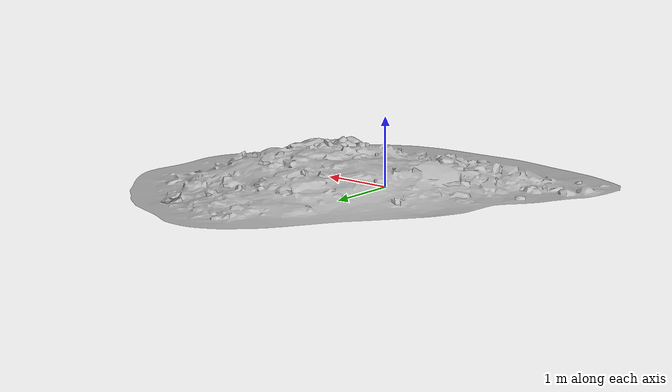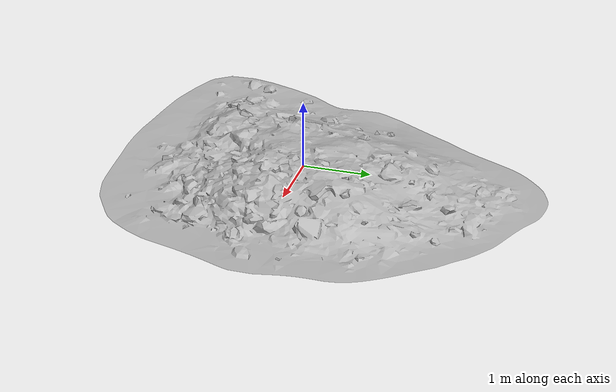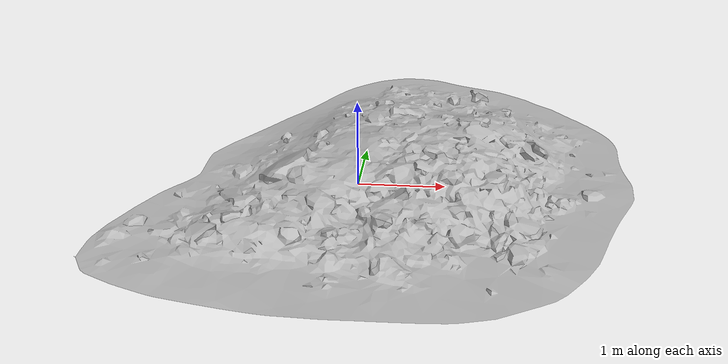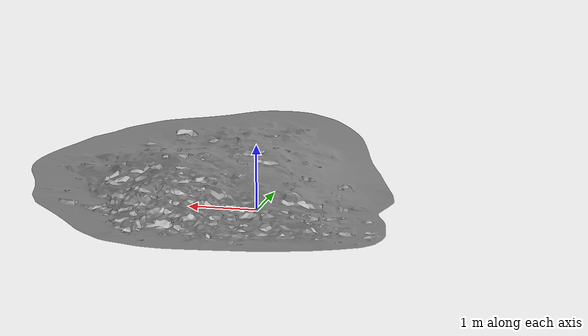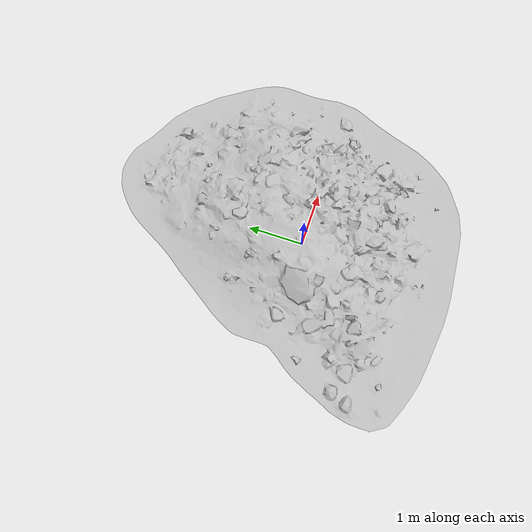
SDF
<?xml version="1.0" ?>
<sdf version='1.4'>
  <model name="pile">
      <static>1</static>
      <link name='link'>
        <visual name='visual'>
          <geometry>
            <mesh>
              <uri>model://pile/meshes/pile.dae</uri>
              <scale>1 1 1</scale>
            </mesh>
          </geometry>
        </visual>
      </link>
  </model>
</sdf>
